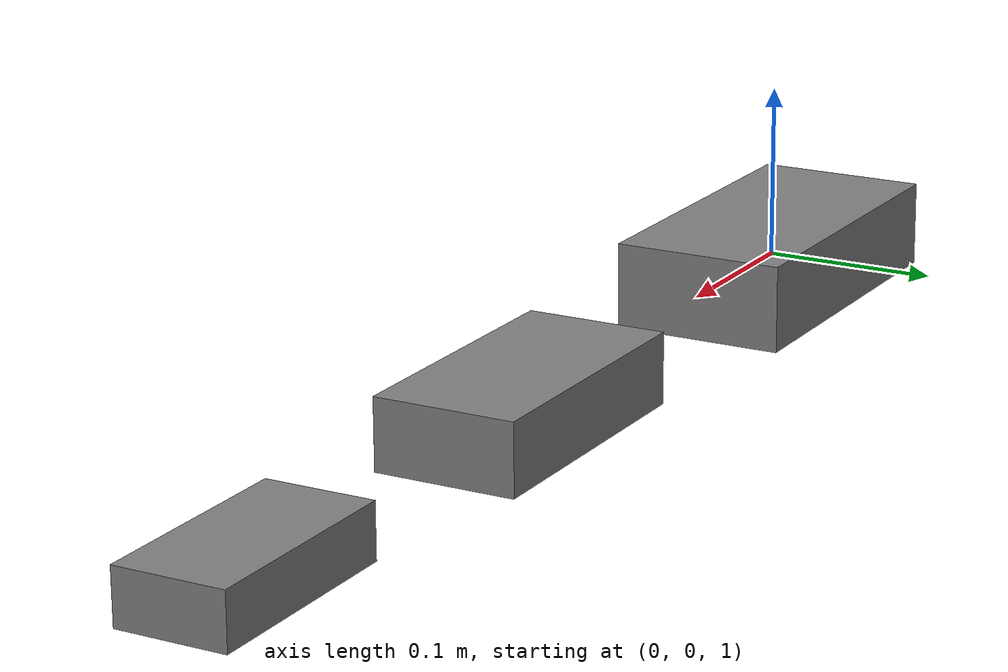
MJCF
<mujoco model="anon-chain">
                <worldbody>
                    <body pos="0 0 1">
                        <joint type="hinge" axis="0 1 0"/>
                        <geom type="box" size="0.1 0.05 0.025" mass="1"/>
                        <body pos="0.3 0 0">
                            <joint type="hinge" axis="0 1 0"/>
                            <geom type="box" size="0.08 0.04 0.02" mass="0.5"/>
                            <body pos="0.25 0 0">
                                <joint type="hinge" axis="0 1 0"/>
                                <geom type="box" size="0.06 0.03 0.015" mass="0.3"/>
                            </body>
                        </body>
                    </body>
                </worldbody>
            </mujoco>
